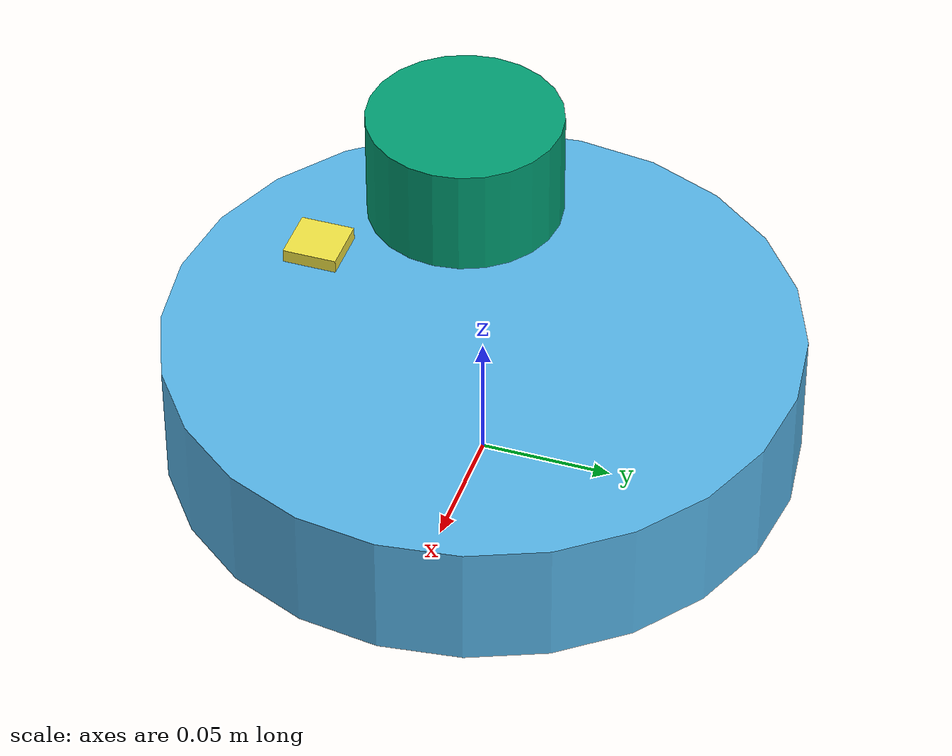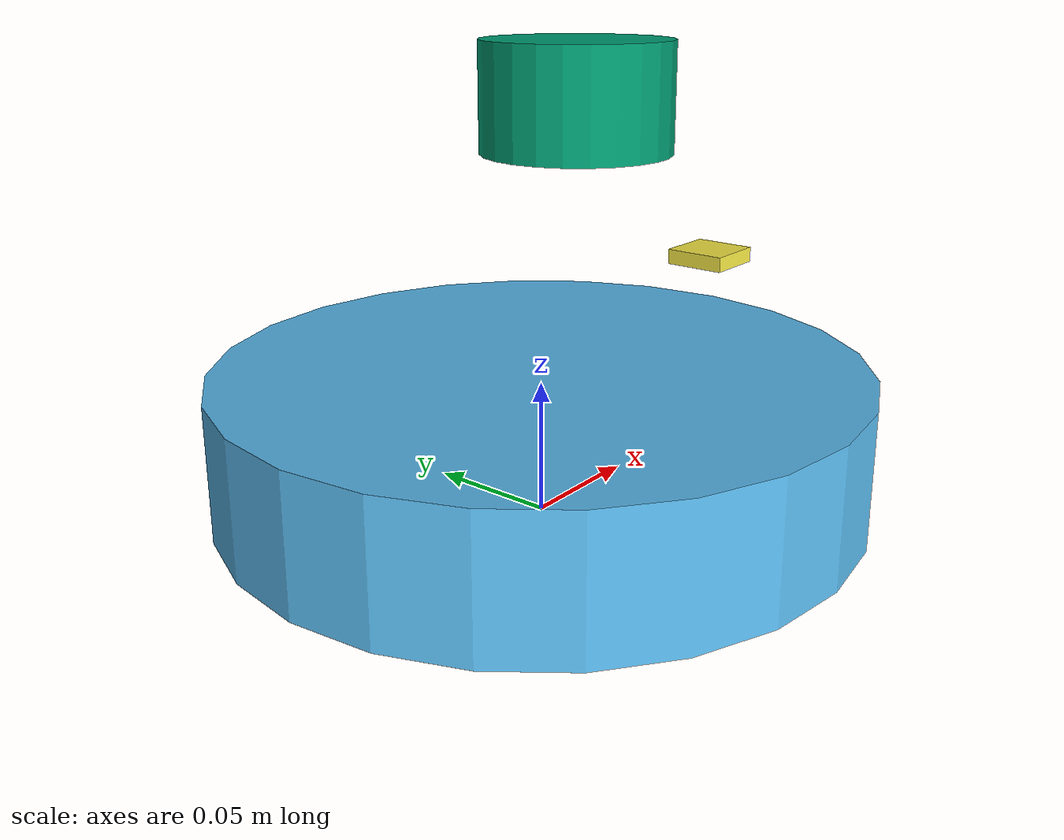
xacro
<?xml version="1.0"?>
<robot xmlns:xacro="http://www.ros.org/wiki/xacro" name="delivery_bot">

  <!-- All MEASURE values are placeholders until measured on the robot. -->
  <xacro:property name="wheel_base"   value="0.156"/>  <!-- measured 2026-10-31, left-right wheel centres; front-back spacing 0.113 -->
  <xacro:property name="wheel_radius" value="0.0325"/> <!-- brief default: standard TT wheel, 65 mm diameter; not measured -->
  <xacro:property name="robot_radius" value="0.12"/>   <!-- measured 2026-10-31, approx (user estimate) -->
  <xacro:property name="laser_x"      value="0.02"/>   <!-- measured 2026-10-31, tape, forward of axle centre -->
  <xacro:property name="laser_y"      value="0.0"/>    <!-- measured 2026-10-31, centred -->
  <xacro:property name="laser_z"      value="0.12"/>   <!-- measured 2026-10-31, approx 12 cm above axle height -->
  <xacro:property name="laser_yaw"    value="0.0"/>    <!-- box test 1.4 (2026-10-31): face centred at +2.6 deg (box at 0.39 m, placed by eye, 2 reps: +6, +2.6 deg), inside placement error, so 0 -->
  <xacro:property name="imu_x"        value="0.023"/>  <!-- measured 2026-10-31, tape, forward of axle centre -->
  <xacro:property name="imu_y"        value="-0.055"/> <!-- measured 2026-10-31, tape, 5.5 cm right of axle centre (ROS y is left) -->
  <xacro:property name="imu_z"        value="0.07"/>   <!-- measured 2026-10-31, approx 7 cm above axle height -->

  <link name="base_footprint"/>

  <link name="base_link">
    <visual>
      <geometry><cylinder radius="${robot_radius}" length="0.05"/></geometry>
    </visual>
  </link>

  <link name="laser">
    <visual>
      <geometry><cylinder radius="0.035" length="0.04"/></geometry>
    </visual>
  </link>

  <link name="imu_link">
    <visual>
      <geometry><box size="0.02 0.02 0.005"/></geometry>
    </visual>
  </link>

  <joint name="base_footprint_to_base_link" type="fixed">
    <parent link="base_footprint"/>
    <child link="base_link"/>
    <origin xyz="0 0 ${wheel_radius}" rpy="0 0 0"/>
  </joint>

  <joint name="base_link_to_laser" type="fixed">
    <parent link="base_link"/>
    <child link="laser"/>
    <origin xyz="${laser_x} ${laser_y} ${laser_z}" rpy="0 0 ${laser_yaw}"/>
  </joint>

  <joint name="base_link_to_imu" type="fixed">
    <parent link="base_link"/>
    <child link="imu_link"/>
    <origin xyz="${imu_x} ${imu_y} ${imu_z}" rpy="0 0 0"/>
  </joint>

</robot>
